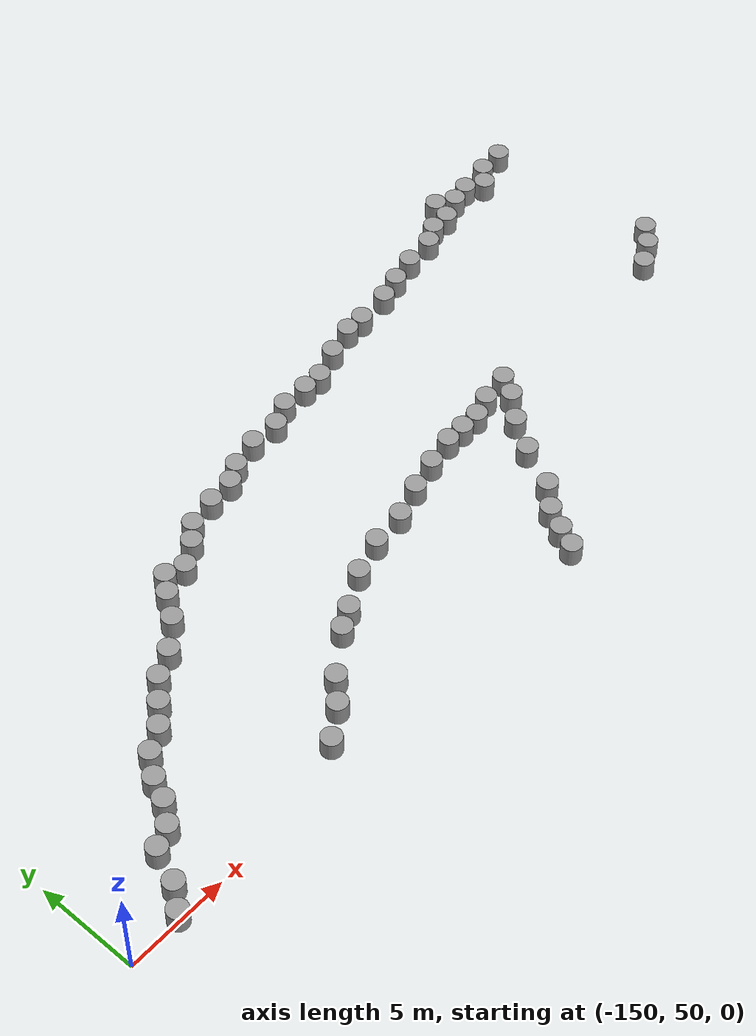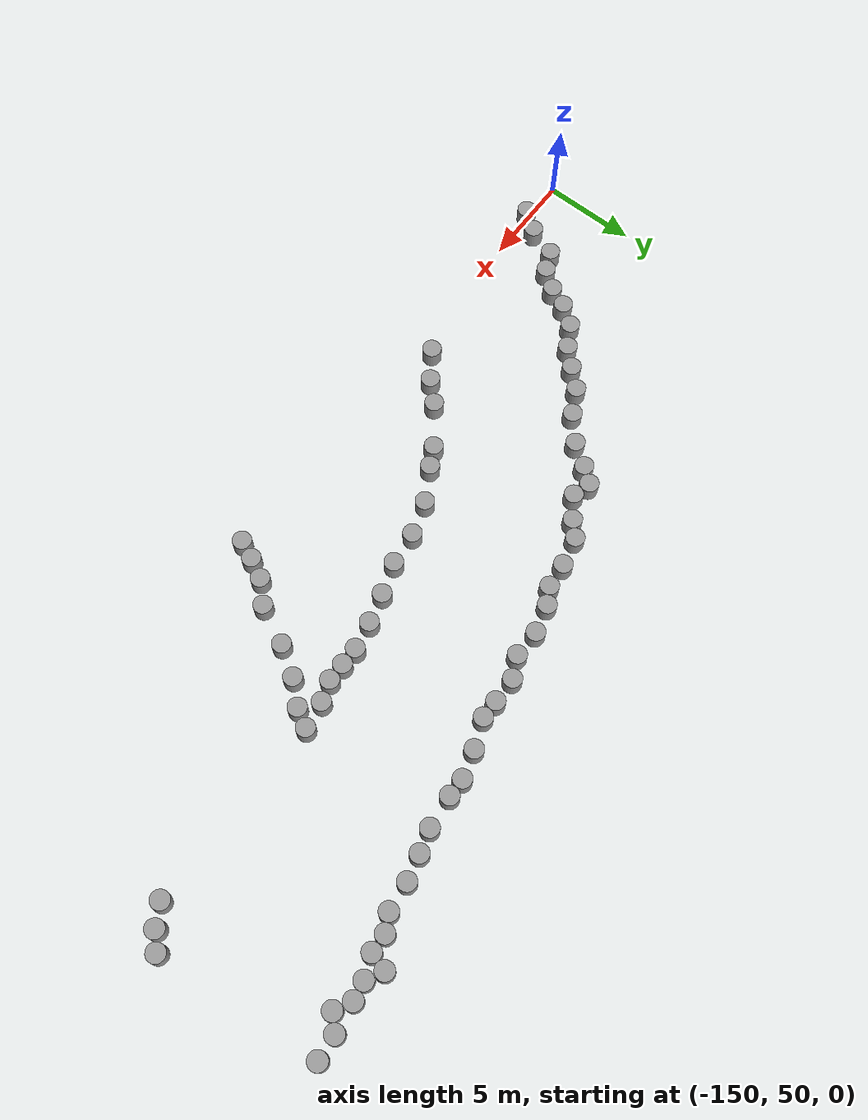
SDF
<sdf version="1.7">
 <world name="default">
  <model name="unit_cylinder_85_clone_116">
   <pose>-106.053 68.435 0.452814 0.005546 0.001094 -0.003629</pose>
   <link name="link">
    <inertial>
     <mass>1</mass>
     <inertia><ixx>0.145833</ixx><ixy>0</ixy><ixz>0</ixz><iyy>0.145833</iyy><iyz>0</iyz><izz>0.125</izz></inertia>
    </inertial>
    <collision name="collision">
     <geometry><cylinder><radius>0.5</radius><length>1</length></cylinder></geometry>
    </collision>
    <visual name="visual">
     <geometry><cylinder><radius>0.5</radius><length>1</length></cylinder></geometry>
     <material>
      <script><name>Gazebo/Grey</name><uri>file://media/materials/scripts/gazebo.material</uri></script>
     </material>
    </visual>
   </link>
  </model>
  <model name="unit_cylinder_85_clone_133">
   <pose>-105.223 59.7453 0.450739 -0.000106 -0.001153 -8.8e-05</pose>
   <link name="link">
    <inertial>
     <mass>1</mass>
     <inertia><ixx>0.145833</ixx><ixy>0</ixy><ixz>0</ixz><iyy>0.145833</iyy><iyz>0</iyz><izz>0.125</izz></inertia>
    </inertial>
    <collision name="collision">
     <geometry><cylinder><radius>0.5</radius><length>1</length></cylinder></geometry>
    </collision>
    <visual name="visual">
     <geometry><cylinder><radius>0.5</radius><length>1</length></cylinder></geometry>
     <material>
      <script><name>Gazebo/Grey</name><uri>file://media/materials/scripts/gazebo.material</uri></script>
     </material>
    </visual>
   </link>
  </model>
  <model name="unit_cylinder_85_clone_134">
   <pose>-106.001 59.0001 0.449909 -0.000101 -0.001156 0.000269</pose>
   <link name="link">
    <inertial>
     <mass>1</mass>
     <inertia><ixx>0.145833</ixx><ixy>0</ixy><ixz>0</ixz><iyy>0.145833</iyy><iyz>0</iyz><izz>0.125</izz></inertia>
    </inertial>
    <collision name="collision">
     <geometry><cylinder><radius>0.5</radius><length>1</length></cylinder></geometry>
    </collision>
    <visual name="visual">
     <geometry><cylinder><radius>0.5</radius><length>1</length></cylinder></geometry>
     <material>
      <script><name>Gazebo/Grey</name><uri>file://media/materials/scripts/gazebo.material</uri></script>
     </material>
    </visual>
   </link>
  </model>
  <model name="unit_cylinder_85_clone_135">
   <pose>-107.103 58.3447 0.435562 -0.013154 -0.033875 0.000451</pose>
   <link name="link">
    <inertial>
     <mass>1</mass>
     <inertia><ixx>0.145833</ixx><ixy>0</ixy><ixz>0</ixz><iyy>0.145833</iyy><iyz>0</iyz><izz>0.125</izz></inertia>
    </inertial>
    <collision name="collision">
     <geometry><cylinder><radius>0.5</radius><length>1</length></cylinder></geometry>
    </collision>
    <visual name="visual">
     <geometry><cylinder><radius>0.5</radius><length>1</length></cylinder></geometry>
     <material>
      <script><name>Gazebo/Grey</name><uri>file://media/materials/scripts/gazebo.material</uri></script>
     </material>
    </visual>
   </link>
  </model>
  <model name="unit_cylinder_85_clone_230">
   <pose>-117.441 58.5671 0.450005 2e-06 -1.1e-05 0.000359</pose>
   <link name="link">
    <inertial>
     <mass>1</mass>
     <inertia><ixx>0.145833</ixx><ixy>0</ixy><ixz>0</ixz><iyy>0.145833</iyy><iyz>0</iyz><izz>0.125</izz></inertia>
    </inertial>
    <collision name="collision">
     <geometry><cylinder><radius>0.5</radius><length>1</length></cylinder></geometry>
    </collision>
    <visual name="visual">
     <geometry><cylinder><radius>0.5</radius><length>1</length></cylinder></geometry>
     <material>
      <script><name>Gazebo/Grey</name><uri>file://media/materials/scripts/gazebo.material</uri></script>
     </material>
    </visual>
   </link>
  </model>
  <model name="unit_cylinder_85_clone_231">
   <pose>-117.985 57.6195 0.44999 0 -0 0.000514</pose>
   <link name="link">
    <inertial>
     <mass>1</mass>
     <inertia><ixx>0.145833</ixx><ixy>0</ixy><ixz>0</ixz><iyy>0.145833</iyy><iyz>0</iyz><izz>0.125</izz></inertia>
    </inertial>
    <collision name="collision">
     <geometry><cylinder><radius>0.5</radius><length>1</length></cylinder></geometry>
    </collision>
    <visual name="visual">
     <geometry><cylinder><radius>0.5</radius><length>1</length></cylinder></geometry>
     <material>
      <script><name>Gazebo/Grey</name><uri>file://media/materials/scripts/gazebo.material</uri></script>
     </material>
    </visual>
   </link>
  </model>
  <model name="unit_cylinder_85_clone_232">
   <pose>-119.028 56.4934 0.449997 -5e-06 2e-06 0.000402</pose>
   <link name="link">
    <inertial>
     <mass>1</mass>
     <inertia><ixx>0.145833</ixx><ixy>0</ixy><ixz>0</ixz><iyy>0.145833</iyy><iyz>0</iyz><izz>0.125</izz></inertia>
    </inertial>
    <collision name="collision">
     <geometry><cylinder><radius>0.5</radius><length>1</length></cylinder></geometry>
    </collision>
    <visual name="visual">
     <geometry><cylinder><radius>0.5</radius><length>1</length></cylinder></geometry>
     <material>
      <script><name>Gazebo/Grey</name><uri>file://media/materials/scripts/gazebo.material</uri></script>
     </material>
    </visual>
   </link>
  </model>
  <model name="unit_cylinder_85_clone_233">
   <pose>-120 55.0001 0.45 0 -0 0.000477</pose>
   <link name="link">
    <inertial>
     <mass>1</mass>
     <inertia><ixx>0.145833</ixx><ixy>0</ixy><ixz>0</ixz><iyy>0.145833</iyy><iyz>0</iyz><izz>0.125</izz></inertia>
    </inertial>
    <collision name="collision">
     <geometry><cylinder><radius>0.5</radius><length>1</length></cylinder></geometry>
    </collision>
    <visual name="visual">
     <geometry><cylinder><radius>0.5</radius><length>1</length></cylinder></geometry>
     <material>
      <script><name>Gazebo/Grey</name><uri>file://media/materials/scripts/gazebo.material</uri></script>
     </material>
    </visual>
   </link>
  </model>
  <model name="unit_cylinder_85_clone_234">
   <pose>-121 52.9999 0.44999 0 -0 0.000353</pose>
   <link name="link">
    <inertial>
     <mass>1</mass>
     <inertia><ixx>0.145833</ixx><ixy>0</ixy><ixz>0</ixz><iyy>0.145833</iyy><iyz>0</iyz><izz>0.125</izz></inertia>
    </inertial>
    <collision name="collision">
     <geometry><cylinder><radius>0.5</radius><length>1</length></cylinder></geometry>
    </collision>
    <visual name="visual">
     <geometry><cylinder><radius>0.5</radius><length>1</length></cylinder></geometry>
     <material>
      <script><name>Gazebo/Grey</name><uri>file://media/materials/scripts/gazebo.material</uri></script>
     </material>
    </visual>
   </link>
  </model>
  <model name="unit_cylinder_85_clone_235">
   <pose>-122 51.9998 0.45 0 -0 0.000545</pose>
   <link name="link">
    <inertial>
     <mass>1</mass>
     <inertia><ixx>0.145833</ixx><ixy>0</ixy><ixz>0</ixz><iyy>0.145833</iyy><iyz>0</iyz><izz>0.125</izz></inertia>
    </inertial>
    <collision name="collision">
     <geometry><cylinder><radius>0.5</radius><length>1</length></cylinder></geometry>
    </collision>
    <visual name="visual">
     <geometry><cylinder><radius>0.5</radius><length>1</length></cylinder></geometry>
     <material>
      <script><name>Gazebo/Grey</name><uri>file://media/materials/scripts/gazebo.material</uri></script>
     </material>
    </visual>
   </link>
  </model>
  <model name="unit_cylinder_85_clone_236">
   <pose>-122.56 50.9675 0.449991 0 2e-06 0.000415</pose>
   <link name="link">
    <inertial>
     <mass>1</mass>
     <inertia><ixx>0.145833</ixx><ixy>0</ixy><ixz>0</ixz><iyy>0.145833</iyy><iyz>0</iyz><izz>0.125</izz></inertia>
    </inertial>
    <collision name="collision">
     <geometry><cylinder><radius>0.5</radius><length>1</length></cylinder></geometry>
    </collision>
    <visual name="visual">
     <geometry><cylinder><radius>0.5</radius><length>1</length></cylinder></geometry>
     <material>
      <script><name>Gazebo/Grey</name><uri>file://media/materials/scripts/gazebo.material</uri></script>
     </material>
    </visual>
   </link>
  </model>
  <model name="unit_cylinder_85_clone_237">
   <pose>-123 50 0.449997 3e-06 -5e-06 0.00042</pose>
   <link name="link">
    <inertial>
     <mass>1</mass>
     <inertia><ixx>0.145833</ixx><ixy>0</ixy><ixz>0</ixz><iyy>0.145833</iyy><iyz>0</iyz><izz>0.125</izz></inertia>
    </inertial>
    <collision name="collision">
     <geometry><cylinder><radius>0.5</radius><length>1</length></cylinder></geometry>
    </collision>
    <visual name="visual">
     <geometry><cylinder><radius>0.5</radius><length>1</length></cylinder></geometry>
     <material>
      <script><name>Gazebo/Grey</name><uri>file://media/materials/scripts/gazebo.material</uri></script>
     </material>
    </visual>
   </link>
  </model>
  <model name="unit_cylinder_85_clone_246">
   <pose>-118.909 58.3639 0.450003 -5e-06 4e-06 0.000749</pose>
   <link name="link">
    <inertial>
     <mass>1</mass>
     <inertia><ixx>0.145833</ixx><ixy>0</ixy><ixz>0</ixz><iyy>0.145833</iyy><iyz>0</iyz><izz>0.125</izz></inertia>
    </inertial>
    <collision name="collision">
     <geometry><cylinder><radius>0.5</radius><length>1</length></cylinder></geometry>
    </collision>
    <visual name="visual">
     <geometry><cylinder><radius>0.5</radius><length>1</length></cylinder></geometry>
     <material>
      <script><name>Gazebo/Grey</name><uri>file://media/materials/scripts/gazebo.material</uri></script>
     </material>
    </visual>
   </link>
  </model>
  <model name="unit_cylinder_85_clone_244_clone_2">
   <pose>-120 58 0.449996 -1e-06 2e-06 0.000366</pose>
   <link name="link">
    <inertial>
     <mass>1</mass>
     <inertia><ixx>0.145833</ixx><ixy>0</ixy><ixz>0</ixz><iyy>0.145833</iyy><iyz>0</iyz><izz>0.125</izz></inertia>
    </inertial>
    <collision name="collision">
     <geometry><cylinder><radius>0.5</radius><length>1</length></cylinder></geometry>
    </collision>
    <visual name="visual">
     <geometry><cylinder><radius>0.5</radius><length>1</length></cylinder></geometry>
     <material>
      <script><name>Gazebo/Grey</name><uri>file://media/materials/scripts/gazebo.material</uri></script>
     </material>
    </visual>
   </link>
  </model>
  <model name="unit_cylinder_85_clone_244_clone_3">
   <pose>-121 58 0.449997 -4e-06 2e-06 0.00041</pose>
   <link name="link">
    <inertial>
     <mass>1</mass>
     <inertia><ixx>0.145833</ixx><ixy>0</ixy><ixz>0</ixz><iyy>0.145833</iyy><iyz>0</iyz><izz>0.125</izz></inertia>
    </inertial>
    <collision name="collision">
     <geometry><cylinder><radius>0.5</radius><length>1</length></cylinder></geometry>
    </collision>
    <visual name="visual">
     <geometry><cylinder><radius>0.5</radius><length>1</length></cylinder></geometry>
     <material>
      <script><name>Gazebo/Grey</name><uri>file://media/materials/scripts/gazebo.material</uri></script>
     </material>
    </visual>
   </link>
  </model>
  <model name="unit_cylinder_85_clone_244_clone_4">
   <pose>-122 58 0.449998 6e-06 -1e-06 0.000341</pose>
   <link name="link">
    <inertial>
     <mass>1</mass>
     <inertia><ixx>0.145833</ixx><ixy>0</ixy><ixz>0</ixz><iyy>0.145833</iyy><iyz>0</iyz><izz>0.125</izz></inertia>
    </inertial>
    <collision name="collision">
     <geometry><cylinder><radius>0.5</radius><length>1</length></cylinder></geometry>
    </collision>
    <visual name="visual">
     <geometry><cylinder><radius>0.5</radius><length>1</length></cylinder></geometry>
     <material>
      <script><name>Gazebo/Grey</name><uri>file://media/materials/scripts/gazebo.material</uri></script>
     </material>
    </visual>
   </link>
  </model>
  <model name="unit_cylinder_85_clone_244_clone_5">
   <pose>-123.481 57.7121 0.449998 0 3e-06 0.00035</pose>
   <link name="link">
    <inertial>
     <mass>1</mass>
     <inertia><ixx>0.145833</ixx><ixy>0</ixy><ixz>0</ixz><iyy>0.145833</iyy><iyz>0</iyz><izz>0.125</izz></inertia>
    </inertial>
    <collision name="collision">
     <geometry><cylinder><radius>0.5</radius><length>1</length></cylinder></geometry>
    </collision>
    <visual name="visual">
     <geometry><cylinder><radius>0.5</radius><length>1</length></cylinder></geometry>
     <material>
      <script><name>Gazebo/Grey</name><uri>file://media/materials/scripts/gazebo.material</uri></script>
     </material>
    </visual>
   </link>
  </model>
  <model name="unit_cylinder_85_clone_244_clone_6">
   <pose>-125.037 57.2972 0.449996 -1e-06 1e-06 0.000514</pose>
   <link name="link">
    <inertial>
     <mass>1</mass>
     <inertia><ixx>0.145833</ixx><ixy>0</ixy><ixz>0</ixz><iyy>0.145833</iyy><iyz>0</iyz><izz>0.125</izz></inertia>
    </inertial>
    <collision name="collision">
     <geometry><cylinder><radius>0.5</radius><length>1</length></cylinder></geometry>
    </collision>
    <visual name="visual">
     <geometry><cylinder><radius>0.5</radius><length>1</length></cylinder></geometry>
     <material>
      <script><name>Gazebo/Grey</name><uri>file://media/materials/scripts/gazebo.material</uri></script>
     </material>
    </visual>
   </link>
  </model>
  <model name="unit_cylinder_85_clone_244_clone_7">
   <pose>-126.695 56.7493 0.45 0 -0 0.000553</pose>
   <link name="link">
    <inertial>
     <mass>1</mass>
     <inertia><ixx>0.145833</ixx><ixy>0</ixy><ixz>0</ixz><iyy>0.145833</iyy><iyz>0</iyz><izz>0.125</izz></inertia>
    </inertial>
    <collision name="collision">
     <geometry><cylinder><radius>0.5</radius><length>1</length></cylinder></geometry>
    </collision>
    <visual name="visual">
     <geometry><cylinder><radius>0.5</radius><length>1</length></cylinder></geometry>
     <material>
      <script><name>Gazebo/Grey</name><uri>file://media/materials/scripts/gazebo.material</uri></script>
     </material>
    </visual>
   </link>
  </model>
  <model name="unit_cylinder_85_clone_244_clone_8">
   <pose>-128.489 56.5482 0.449995 0 3e-06 0.000417</pose>
   <link name="link">
    <inertial>
     <mass>1</mass>
     <inertia><ixx>0.145833</ixx><ixy>0</ixy><ixz>0</ixz><iyy>0.145833</iyy><iyz>0</iyz><izz>0.125</izz></inertia>
    </inertial>
    <collision name="collision">
     <geometry><cylinder><radius>0.5</radius><length>1</length></cylinder></geometry>
    </collision>
    <visual name="visual">
     <geometry><cylinder><radius>0.5</radius><length>1</length></cylinder></geometry>
     <material>
      <script><name>Gazebo/Grey</name><uri>file://media/materials/scripts/gazebo.material</uri></script>
     </material>
    </visual>
   </link>
  </model>
  <model name="unit_cylinder_85_clone_244_clone_9">
   <pose>-130.267 55.9823 0.45 0 -0 0.000177</pose>
   <link name="link">
    <inertial>
     <mass>1</mass>
     <inertia><ixx>0.145833</ixx><ixy>0</ixy><ixz>0</ixz><iyy>0.145833</iyy><iyz>0</iyz><izz>0.125</izz></inertia>
    </inertial>
    <collision name="collision">
     <geometry><cylinder><radius>0.5</radius><length>1</length></cylinder></geometry>
    </collision>
    <visual name="visual">
     <geometry><cylinder><radius>0.5</radius><length>1</length></cylinder></geometry>
     <material>
      <script><name>Gazebo/Grey</name><uri>file://media/materials/scripts/gazebo.material</uri></script>
     </material>
    </visual>
   </link>
  </model>
  <model name="unit_cylinder_85_clone_244_clone_10">
   <pose>-132 55.0001 0.45 0 -0 0.000217</pose>
   <link name="link">
    <inertial>
     <mass>1</mass>
     <inertia><ixx>0.145833</ixx><ixy>0</ixy><ixz>0</ixz><iyy>0.145833</iyy><iyz>0</iyz><izz>0.125</izz></inertia>
    </inertial>
    <collision name="collision">
     <geometry><cylinder><radius>0.5</radius><length>1</length></cylinder></geometry>
    </collision>
    <visual name="visual">
     <geometry><cylinder><radius>0.5</radius><length>1</length></cylinder></geometry>
     <material>
      <script><name>Gazebo/Grey</name><uri>file://media/materials/scripts/gazebo.material</uri></script>
     </material>
    </visual>
   </link>
  </model>
  <model name="unit_cylinder_85_clone_244_clone_11">
   <pose>-133 54.4759 0.45 -1e-06 -1e-06 0.000245</pose>
   <link name="link">
    <inertial>
     <mass>1</mass>
     <inertia><ixx>0.145833</ixx><ixy>0</ixy><ixz>0</ixz><iyy>0.145833</iyy><iyz>0</iyz><izz>0.125</izz></inertia>
    </inertial>
    <collision name="collision">
     <geometry><cylinder><radius>0.5</radius><length>1</length></cylinder></geometry>
    </collision>
    <visual name="visual">
     <geometry><cylinder><radius>0.5</radius><length>1</length></cylinder></geometry>
     <material>
      <script><name>Gazebo/Grey</name><uri>file://media/materials/scripts/gazebo.material</uri></script>
     </material>
    </visual>
   </link>
  </model>
  <model name="unit_cylinder_85_clone_244_clone_12">
   <pose>-135 53 0.449996 -3e-06 3e-06 0.000351</pose>
   <link name="link">
    <inertial>
     <mass>1</mass>
     <inertia><ixx>0.145833</ixx><ixy>0</ixy><ixz>0</ixz><iyy>0.145833</iyy><iyz>0</iyz><izz>0.125</izz></inertia>
    </inertial>
    <collision name="collision">
     <geometry><cylinder><radius>0.5</radius><length>1</length></cylinder></geometry>
    </collision>
    <visual name="visual">
     <geometry><cylinder><radius>0.5</radius><length>1</length></cylinder></geometry>
     <material>
      <script><name>Gazebo/Grey</name><uri>file://media/materials/scripts/gazebo.material</uri></script>
     </material>
    </visual>
   </link>
  </model>
  <model name="unit_cylinder_85_clone_244_clone_13">
   <pose>-136 52.0001 0.449992 -2e-06 3e-06 0.00041</pose>
   <link name="link">
    <inertial>
     <mass>1</mass>
     <inertia><ixx>0.145833</ixx><ixy>0</ixy><ixz>0</ixz><iyy>0.145833</iyy><iyz>0</iyz><izz>0.125</izz></inertia>
    </inertial>
    <collision name="collision">
     <geometry><cylinder><radius>0.5</radius><length>1</length></cylinder></geometry>
    </collision>
    <visual name="visual">
     <geometry><cylinder><radius>0.5</radius><length>1</length></cylinder></geometry>
     <material>
      <script><name>Gazebo/Grey</name><uri>file://media/materials/scripts/gazebo.material</uri></script>
     </material>
    </visual>
   </link>
  </model>
  <model name="unit_cylinder_85_clone_244_clone_14">
   <pose>-137.457 51 0.449997 -4e-06 -3e-06 0.000346</pose>
   <link name="link">
    <inertial>
     <mass>1</mass>
     <inertia><ixx>0.145833</ixx><ixy>0</ixy><ixz>0</ixz><iyy>0.145833</iyy><iyz>0</iyz><izz>0.125</izz></inertia>
    </inertial>
    <collision name="collision">
     <geometry><cylinder><radius>0.5</radius><length>1</length></cylinder></geometry>
    </collision>
    <visual name="visual">
     <geometry><cylinder><radius>0.5</radius><length>1</length></cylinder></geometry>
     <material>
      <script><name>Gazebo/Grey</name><uri>file://media/materials/scripts/gazebo.material</uri></script>
     </material>
    </visual>
   </link>
  </model>
  <model name="unit_cylinder_85_clone_244_clone_152">
   <pose>-147.434 49.9787 0.637858 0.01348 -0.00325 0.000731</pose>
   <link name="link">
    <inertial>
     <mass>1</mass>
     <inertia><ixx>0.145833</ixx><ixy>0</ixy><ixz>0</ixz><iyy>0.145833</iyy><iyz>0</iyz><izz>0.125</izz></inertia>
    </inertial>
    <collision name="collision">
     <geometry><cylinder><radius>0.5</radius><length>1</length></cylinder></geometry>
    </collision>
    <visual name="visual">
     <geometry><cylinder><radius>0.5</radius><length>1</length></cylinder></geometry>
     <material>
      <script><name>Gazebo/Grey</name><uri>file://media/materials/scripts/gazebo.material</uri></script>
     </material>
    </visual>
   </link>
  </model>
  <model name="unit_cylinder_85_clone_244_clone_153">
   <pose>-146.642 50.9991 0.654371 0.013319 -0.003471 -0.005184</pose>
   <link name="link">
    <inertial>
     <mass>1</mass>
     <inertia><ixx>0.145833</ixx><ixy>0</ixy><ixz>0</ixz><iyy>0.145833</iyy><iyz>0</iyz><izz>0.125</izz></inertia>
    </inertial>
    <collision name="collision">
     <geometry><cylinder><radius>0.5</radius><length>1</length></cylinder></geometry>
    </collision>
    <visual name="visual">
     <geometry><cylinder><radius>0.5</radius><length>1</length></cylinder></geometry>
     <material>
      <script><name>Gazebo/Grey</name><uri>file://media/materials/scripts/gazebo.material</uri></script>
     </material>
    </visual>
   </link>
  </model>
  <model name="unit_cylinder_85_clone_244_clone_154">
   <pose>-146 52.5713 0.677487 0.013486 -0.003247 0.000492</pose>
   <link name="link">
    <inertial>
     <mass>1</mass>
     <inertia><ixx>0.145833</ixx><ixy>0</ixy><ixz>0</ixz><iyy>0.145833</iyy><iyz>0</iyz><izz>0.125</izz></inertia>
    </inertial>
    <collision name="collision">
     <geometry><cylinder><radius>0.5</radius><length>1</length></cylinder></geometry>
    </collision>
    <visual name="visual">
     <geometry><cylinder><radius>0.5</radius><length>1</length></cylinder></geometry>
     <material>
      <script><name>Gazebo/Grey</name><uri>file://media/materials/scripts/gazebo.material</uri></script>
     </material>
    </visual>
   </link>
  </model>
  <model name="unit_cylinder_85_clone_244_clone_155">
   <pose>-144.993 53.0038 0.671348 -0.003723 0.010246 0.001365</pose>
   <link name="link">
    <inertial>
     <mass>1</mass>
     <inertia><ixx>0.145833</ixx><ixy>0</ixy><ixz>0</ixz><iyy>0.145833</iyy><iyz>0</iyz><izz>0.125</izz></inertia>
    </inertial>
    <collision name="collision">
     <geometry><cylinder><radius>0.5</radius><length>1</length></cylinder></geometry>
    </collision>
    <visual name="visual">
     <geometry><cylinder><radius>0.5</radius><length>1</length></cylinder></geometry>
     <material>
      <script><name>Gazebo/Grey</name><uri>file://media/materials/scripts/gazebo.material</uri></script>
     </material>
    </visual>
   </link>
  </model>
  <model name="unit_cylinder_85_clone_244_clone_156">
   <pose>-144.239 53.9685 0.660094 -0.003739 0.010418 -0.016776</pose>
   <link name="link">
    <inertial>
     <mass>1</mass>
     <inertia><ixx>0.145833</ixx><ixy>0</ixy><ixz>0</ixz><iyy>0.145833</iyy><iyz>0</iyz><izz>0.125</izz></inertia>
    </inertial>
    <collision name="collision">
     <geometry><cylinder><radius>0.5</radius><length>1</length></cylinder></geometry>
    </collision>
    <visual name="visual">
     <geometry><cylinder><radius>0.5</radius><length>1</length></cylinder></geometry>
     <material>
      <script><name>Gazebo/Grey</name><uri>file://media/materials/scripts/gazebo.material</uri></script>
     </material>
    </visual>
   </link>
  </model>
  <model name="unit_cylinder_85_clone_244_clone_157">
   <pose>-143.762 55.0008 0.651339 -0.00311 0.010931 2e-05</pose>
   <link name="link">
    <inertial>
     <mass>1</mass>
     <inertia><ixx>0.145833</ixx><ixy>0</ixy><ixz>0</ixz><iyy>0.145833</iyy><iyz>0</iyz><izz>0.125</izz></inertia>
    </inertial>
    <collision name="collision">
     <geometry><cylinder><radius>0.5</radius><length>1</length></cylinder></geometry>
    </collision>
    <visual name="visual">
     <geometry><cylinder><radius>0.5</radius><length>1</length></cylinder></geometry>
     <material>
      <script><name>Gazebo/Grey</name><uri>file://media/materials/scripts/gazebo.material</uri></script>
     </material>
    </visual>
   </link>
  </model>
  <model name="unit_cylinder_85_clone_244_clone_158">
   <pose>-142.992 56.0013 0.639972 -0.002875 0.010688 0.000797</pose>
   <link name="link">
    <inertial>
     <mass>1</mass>
     <inertia><ixx>0.145833</ixx><ixy>0</ixy><ixz>0</ixz><iyy>0.145833</iyy><iyz>0</iyz><izz>0.125</izz></inertia>
    </inertial>
    <collision name="collision">
     <geometry><cylinder><radius>0.5</radius><length>1</length></cylinder></geometry>
    </collision>
    <visual name="visual">
     <geometry><cylinder><radius>0.5</radius><length>1</length></cylinder></geometry>
     <material>
      <script><name>Gazebo/Grey</name><uri>file://media/materials/scripts/gazebo.material</uri></script>
     </material>
    </visual>
   </link>
  </model>
  <model name="unit_cylinder_85_clone_244_clone_159">
   <pose>-141.856 56.6477 0.626382 -0.002114 0.011145 0.000272</pose>
   <link name="link">
    <inertial>
     <mass>1</mass>
     <inertia><ixx>0.145833</ixx><ixy>0</ixy><ixz>0</ixz><iyy>0.145833</iyy><iyz>0</iyz><izz>0.125</izz></inertia>
    </inertial>
    <collision name="collision">
     <geometry><cylinder><radius>0.5</radius><length>1</length></cylinder></geometry>
    </collision>
    <visual name="visual">
     <geometry><cylinder><radius>0.5</radius><length>1</length></cylinder></geometry>
     <material>
      <script><name>Gazebo/Grey</name><uri>file://media/materials/scripts/gazebo.material</uri></script>
     </material>
    </visual>
   </link>
  </model>
  <model name="unit_cylinder_85_clone_244_clone_160">
   <pose>-140.989 57.5128 0.61465 -0.00199 0.011494 0.00035</pose>
   <link name="link">
    <inertial>
     <mass>1</mass>
     <inertia><ixx>0.145833</ixx><ixy>0</ixy><ixz>0</ixz><iyy>0.145833</iyy><iyz>0</iyz><izz>0.125</izz></inertia>
    </inertial>
    <collision name="collision">
     <geometry><cylinder><radius>0.5</radius><length>1</length></cylinder></geometry>
    </collision>
    <visual name="visual">
     <geometry><cylinder><radius>0.5</radius><length>1</length></cylinder></geometry>
     <material>
      <script><name>Gazebo/Grey</name><uri>file://media/materials/scripts/gazebo.material</uri></script>
     </material>
    </visual>
   </link>
  </model>
  <model name="unit_cylinder_85_clone_244_clone_162">
   <pose>-138.812 59.1006 0.58416 -0.004366 0.015285 0.043282</pose>
   <link name="link">
    <inertial>
     <mass>1</mass>
     <inertia><ixx>0.145833</ixx><ixy>0</ixy><ixz>0</ixz><iyy>0.145833</iyy><iyz>0</iyz><izz>0.125</izz></inertia>
    </inertial>
    <collision name="collision">
     <geometry><cylinder><radius>0.5</radius><length>1</length></cylinder></geometry>
    </collision>
    <visual name="visual">
     <geometry><cylinder><radius>0.5</radius><length>1</length></cylinder></geometry>
     <material>
      <script><name>Gazebo/Grey</name><uri>file://media/materials/scripts/gazebo.material</uri></script>
     </material>
    </visual>
   </link>
  </model>
  <model name="unit_cylinder_85_clone_244_clone_163">
   <pose>-137.543 60.1735 0.558541 -0.003817 0.016951 -0.00374</pose>
   <link name="link">
    <inertial>
     <mass>1</mass>
     <inertia><ixx>0.145833</ixx><ixy>0</ixy><ixz>0</ixz><iyy>0.145833</iyy><iyz>0</iyz><izz>0.125</izz></inertia>
    </inertial>
    <collision name="collision">
     <geometry><cylinder><radius>0.5</radius><length>1</length></cylinder></geometry>
    </collision>
    <visual name="visual">
     <geometry><cylinder><radius>0.5</radius><length>1</length></cylinder></geometry>
     <material>
      <script><name>Gazebo/Grey</name><uri>file://media/materials/scripts/gazebo.material</uri></script>
     </material>
    </visual>
   </link>
  </model>
  <model name="unit_cylinder_85_clone_244_clone_164">
   <pose>-140.09 58.4318 0.602476 -0.001979 0.011503 0.000441</pose>
   <link name="link">
    <inertial>
     <mass>1</mass>
     <inertia><ixx>0.145833</ixx><ixy>0</ixy><ixz>0</ixz><iyy>0.145833</iyy><iyz>0</iyz><izz>0.125</izz></inertia>
    </inertial>
    <collision name="collision">
     <geometry><cylinder><radius>0.5</radius><length>1</length></cylinder></geometry>
    </collision>
    <visual name="visual">
     <geometry><cylinder><radius>0.5</radius><length>1</length></cylinder></geometry>
     <material>
      <script><name>Gazebo/Grey</name><uri>file://media/materials/scripts/gazebo.material</uri></script>
     </material>
    </visual>
   </link>
  </model>
  <model name="unit_cylinder_85_clone_244_clone_161">
   <pose>-136.728 61.2891 0.540705 -0.000422 0.017203 0.167466</pose>
   <link name="link">
    <inertial>
     <mass>1</mass>
     <inertia><ixx>0.145833</ixx><ixy>0</ixy><ixz>0</ixz><iyy>0.145833</iyy><iyz>0</iyz><izz>0.125</izz></inertia>
    </inertial>
    <collision name="collision">
     <geometry><cylinder><radius>0.5</radius><length>1</length></cylinder></geometry>
    </collision>
    <visual name="visual">
     <geometry><cylinder><radius>0.5</radius><length>1</length></cylinder></geometry>
     <material>
      <script><name>Gazebo/Grey</name><uri>file://media/materials/scripts/gazebo.material</uri></script>
     </material>
    </visual>
   </link>
  </model>
  <model name="unit_cylinder_85_clone_244_clone_165">
   <pose>-136.089 62.058 0.527312 -0.012348 0.011147 -0.605053</pose>
   <link name="link">
    <inertial>
     <mass>1</mass>
     <inertia><ixx>0.145833</ixx><ixy>0</ixy><ixz>0</ixz><iyy>0.145833</iyy><iyz>0</iyz><izz>0.125</izz></inertia>
    </inertial>
    <collision name="collision">
     <geometry><cylinder><radius>0.5</radius><length>1</length></cylinder></geometry>
    </collision>
    <visual name="visual">
     <geometry><cylinder><radius>0.5</radius><length>1</length></cylinder></geometry>
     <material>
      <script><name>Gazebo/Grey</name><uri>file://media/materials/scripts/gazebo.material</uri></script>
     </material>
    </visual>
   </link>
  </model>
  <model name="unit_cylinder_85_clone_244_clone_166">
   <pose>-135.13 61.7745 0.513364 0.008734 0.012676 0.665802</pose>
   <link name="link">
    <inertial>
     <mass>1</mass>
     <inertia><ixx>0.145833</ixx><ixy>0</ixy><ixz>0</ixz><iyy>0.145833</iyy><iyz>0</iyz><izz>0.125</izz></inertia>
    </inertial>
    <collision name="collision">
     <geometry><cylinder><radius>0.5</radius><length>1</length></cylinder></geometry>
    </collision>
    <visual name="visual">
     <geometry><cylinder><radius>0.5</radius><length>1</length></cylinder></geometry>
     <material>
      <script><name>Gazebo/Grey</name><uri>file://media/materials/scripts/gazebo.material</uri></script>
     </material>
    </visual>
   </link>
  </model>
  <model name="unit_cylinder_85_clone_244_clone_167">
   <pose>-133.239 63.1855 0.482376 -0.000198 0.016426 0.00124</pose>
   <link name="link">
    <inertial>
     <mass>1</mass>
     <inertia><ixx>0.145833</ixx><ixy>0</ixy><ixz>0</ixz><iyy>0.145833</iyy><iyz>0</iyz><izz>0.125</izz></inertia>
    </inertial>
    <collision name="collision">
     <geometry><cylinder><radius>0.5</radius><length>1</length></cylinder></geometry>
    </collision>
    <visual name="visual">
     <geometry><cylinder><radius>0.5</radius><length>1</length></cylinder></geometry>
     <material>
      <script><name>Gazebo/Grey</name><uri>file://media/materials/scripts/gazebo.material</uri></script>
     </material>
    </visual>
   </link>
  </model>
  <model name="unit_cylinder_85_clone_244_clone_168">
   <pose>-133.981 62.5153 0.494719 -0.000214 0.016425 0.000258</pose>
   <link name="link">
    <inertial>
     <mass>1</mass>
     <inertia><ixx>0.145833</ixx><ixy>0</ixy><ixz>0</ixz><iyy>0.145833</iyy><iyz>0</iyz><izz>0.125</izz></inertia>
    </inertial>
    <collision name="collision">
     <geometry><cylinder><radius>0.5</radius><length>1</length></cylinder></geometry>
    </collision>
    <visual name="visual">
     <geometry><cylinder><radius>0.5</radius><length>1</length></cylinder></geometry>
     <material>
      <script><name>Gazebo/Grey</name><uri>file://media/materials/scripts/gazebo.material</uri></script>
     </material>
    </visual>
   </link>
  </model>
  <model name="unit_cylinder_85_clone_244_clone_169">
   <pose>-131.723 63.5289 0.459622 0.001278 0.012257 -0.006857</pose>
   <link name="link">
    <inertial>
     <mass>1</mass>
     <inertia><ixx>0.145833</ixx><ixy>0</ixy><ixz>0</ixz><iyy>0.145833</iyy><iyz>0</iyz><izz>0.125</izz></inertia>
    </inertial>
    <collision name="collision">
     <geometry><cylinder><radius>0.5</radius><length>1</length></cylinder></geometry>
    </collision>
    <visual name="visual">
     <geometry><cylinder><radius>0.5</radius><length>1</length></cylinder></geometry>
     <material>
      <script><name>Gazebo/Grey</name><uri>file://media/materials/scripts/gazebo.material</uri></script>
     </material>
    </visual>
   </link>
  </model>
  <model name="unit_cylinder_85_clone_244_clone_171">
   <pose>-130.376 63.6509 0.453162 0.004774 0.000781 0.022787</pose>
   <link name="link">
    <inertial>
     <mass>1</mass>
     <inertia><ixx>0.145833</ixx><ixy>0</ixy><ixz>0</ixz><iyy>0.145833</iyy><iyz>0</iyz><izz>0.125</izz></inertia>
    </inertial>
    <collision name="collision">
     <geometry><cylinder><radius>0.5</radius><length>1</length></cylinder></geometry>
    </collision>
    <visual name="visual">
     <geometry><cylinder><radius>0.5</radius><length>1</length></cylinder></geometry>
     <material>
      <script><name>Gazebo/Grey</name><uri>file://media/materials/scripts/gazebo.material</uri></script>
     </material>
    </visual>
   </link>
  </model>
  <model name="unit_cylinder_85_clone_244_clone_172">
   <pose>-129.499 64.1316 0.454377 0.00529 0.00125 -0.010757</pose>
   <link name="link">
    <inertial>
     <mass>1</mass>
     <inertia><ixx>0.145833</ixx><ixy>0</ixy><ixz>0</ixz><iyy>0.145833</iyy><iyz>0</iyz><izz>0.125</izz></inertia>
    </inertial>
    <collision name="collision">
     <geometry><cylinder><radius>0.5</radius><length>1</length></cylinder></geometry>
    </collision>
    <visual name="visual">
     <geometry><cylinder><radius>0.5</radius><length>1</length></cylinder></geometry>
     <material>
      <script><name>Gazebo/Grey</name><uri>file://media/materials/scripts/gazebo.material</uri></script>
     </material>
    </visual>
   </link>
  </model>
  <model name="unit_cylinder_85_clone_244_clone_173">
   <pose>-128.01 64.507 0.454633 0.005305 0.001158 0.000516</pose>
   <link name="link">
    <inertial>
     <mass>1</mass>
     <inertia><ixx>0.145833</ixx><ixy>0</ixy><ixz>0</ixz><iyy>0.145833</iyy><iyz>0</iyz><izz>0.125</izz></inertia>
    </inertial>
    <collision name="collision">
     <geometry><cylinder><radius>0.5</radius><length>1</length></cylinder></geometry>
    </collision>
    <visual name="visual">
     <geometry><cylinder><radius>0.5</radius><length>1</length></cylinder></geometry>
     <material>
      <script><name>Gazebo/Grey</name><uri>file://media/materials/scripts/gazebo.material</uri></script>
     </material>
    </visual>
   </link>
  </model>
  <model name="unit_cylinder_85_clone_244_clone_174">
   <pose>-126.527 64.4678 0.453004 0.004718 0.001029 0.000556</pose>
   <link name="link">
    <inertial>
     <mass>1</mass>
     <inertia><ixx>0.145833</ixx><ixy>0</ixy><ixz>0</ixz><iyy>0.145833</iyy><iyz>0</iyz><izz>0.125</izz></inertia>
    </inertial>
    <collision name="collision">
     <geometry><cylinder><radius>0.5</radius><length>1</length></cylinder></geometry>
    </collision>
    <visual name="visual">
     <geometry><cylinder><radius>0.5</radius><length>1</length></cylinder></geometry>
     <material>
      <script><name>Gazebo/Grey</name><uri>file://media/materials/scripts/gazebo.material</uri></script>
     </material>
    </visual>
   </link>
  </model>
  <model name="unit_cylinder_85_clone_244_clone_175">
   <pose>-125.402 64.9961 0.454197 0.005303 0.001161 0.00089</pose>
   <link name="link">
    <inertial>
     <mass>1</mass>
     <inertia><ixx>0.145833</ixx><ixy>0</ixy><ixz>0</ixz><iyy>0.145833</iyy><iyz>0</iyz><izz>0.125</izz></inertia>
    </inertial>
    <collision name="collision">
     <geometry><cylinder><radius>0.5</radius><length>1</length></cylinder></geometry>
    </collision>
    <visual name="visual">
     <geometry><cylinder><radius>0.5</radius><length>1</length></cylinder></geometry>
     <material>
      <script><name>Gazebo/Grey</name><uri>file://media/materials/scripts/gazebo.material</uri></script>
     </material>
    </visual>
   </link>
  </model>
  <model name="unit_cylinder_85_clone_244_clone_176">
   <pose>-124.011 65.0071 0.453027 0.004736 0.000659 0.02244</pose>
   <link name="link">
    <inertial>
     <mass>1</mass>
     <inertia><ixx>0.145833</ixx><ixy>0</ixy><ixz>0</ixz><iyy>0.145833</iyy><iyz>0</iyz><izz>0.125</izz></inertia>
    </inertial>
    <collision name="collision">
     <geometry><cylinder><radius>0.5</radius><length>1</length></cylinder></geometry>
    </collision>
    <visual name="visual">
     <geometry><cylinder><radius>0.5</radius><length>1</length></cylinder></geometry>
     <material>
      <script><name>Gazebo/Grey</name><uri>file://media/materials/scripts/gazebo.material</uri></script>
     </material>
    </visual>
   </link>
  </model>
  <model name="unit_cylinder_85_clone_244_clone_177">
   <pose>-123.011 65.0056 0.452195 0.004583 0.000934 -0.039489</pose>
   <link name="link">
    <inertial>
     <mass>1</mass>
     <inertia><ixx>0.145833</ixx><ixy>0</ixy><ixz>0</ixz><iyy>0.145833</iyy><iyz>0</iyz><izz>0.125</izz></inertia>
    </inertial>
    <collision name="collision">
     <geometry><cylinder><radius>0.5</radius><length>1</length></cylinder></geometry>
    </collision>
    <visual name="visual">
     <geometry><cylinder><radius>0.5</radius><length>1</length></cylinder></geometry>
     <material>
      <script><name>Gazebo/Grey</name><uri>file://media/materials/scripts/gazebo.material</uri></script>
     </material>
    </visual>
   </link>
  </model>
  <model name="unit_cylinder_85_clone_244_clone_178">
   <pose>-121.485 65.5849 0.453788 0.004963 0.000817 0.000821</pose>
   <link name="link">
    <inertial>
     <mass>1</mass>
     <inertia><ixx>0.145833</ixx><ixy>0</ixy><ixz>0</ixz><iyy>0.145833</iyy><iyz>0</iyz><izz>0.125</izz></inertia>
    </inertial>
    <collision name="collision">
     <geometry><cylinder><radius>0.5</radius><length>1</length></cylinder></geometry>
    </collision>
    <visual name="visual">
     <geometry><cylinder><radius>0.5</radius><length>1</length></cylinder></geometry>
     <material>
      <script><name>Gazebo/Grey</name><uri>file://media/materials/scripts/gazebo.material</uri></script>
     </material>
    </visual>
   </link>
  </model>
  <model name="unit_cylinder_85_clone_244_clone_179">
   <pose>-119.999 65.9959 0.454505 0.005345 0.000868 0.000276</pose>
   <link name="link">
    <inertial>
     <mass>1</mass>
     <inertia><ixx>0.145833</ixx><ixy>0</ixy><ixz>0</ixz><iyy>0.145833</iyy><iyz>0</iyz><izz>0.125</izz></inertia>
    </inertial>
    <collision name="collision">
     <geometry><cylinder><radius>0.5</radius><length>1</length></cylinder></geometry>
    </collision>
    <visual name="visual">
     <geometry><cylinder><radius>0.5</radius><length>1</length></cylinder></geometry>
     <material>
      <script><name>Gazebo/Grey</name><uri>file://media/materials/scripts/gazebo.material</uri></script>
     </material>
    </visual>
   </link>
  </model>
  <model name="unit_cylinder_85_clone_244_clone_180">
   <pose>-118.999 65.9967 0.453806 0.004997 0.00087 0.000856</pose>
   <link name="link">
    <inertial>
     <mass>1</mass>
     <inertia><ixx>0.145833</ixx><ixy>0</ixy><ixz>0</ixz><iyy>0.145833</iyy><iyz>0</iyz><izz>0.125</izz></inertia>
    </inertial>
    <collision name="collision">
     <geometry><cylinder><radius>0.5</radius><length>1</length></cylinder></geometry>
    </collision>
    <visual name="visual">
     <geometry><cylinder><radius>0.5</radius><length>1</length></cylinder></geometry>
     <material>
      <script><name>Gazebo/Grey</name><uri>file://media/materials/scripts/gazebo.material</uri></script>
     </material>
    </visual>
   </link>
  </model>
  <model name="unit_cylinder_85_clone_244_clone_181">
   <pose>-117.228 66.1666 0.453296 0.004787 0.000782 -0.001145</pose>
   <link name="link">
    <inertial>
     <mass>1</mass>
     <inertia><ixx>0.145833</ixx><ixy>0</ixy><ixz>0</ixz><iyy>0.145833</iyy><iyz>0</iyz><izz>0.125</izz></inertia>
    </inertial>
    <collision name="collision">
     <geometry><cylinder><radius>0.5</radius><length>1</length></cylinder></geometry>
    </collision>
    <visual name="visual">
     <geometry><cylinder><radius>0.5</radius><length>1</length></cylinder></geometry>
     <material>
      <script><name>Gazebo/Grey</name><uri>file://media/materials/scripts/gazebo.material</uri></script>
     </material>
    </visual>
   </link>
  </model>
  <model name="unit_cylinder_85_clone_244_clone_182">
   <pose>-116 66.5032 0.453716 0.005059 0.000987 0.000894</pose>
   <link name="link">
    <inertial>
     <mass>1</mass>
     <inertia><ixx>0.145833</ixx><ixy>0</ixy><ixz>0</ixz><iyy>0.145833</iyy><iyz>0</iyz><izz>0.125</izz></inertia>
    </inertial>
    <collision name="collision">
     <geometry><cylinder><radius>0.5</radius><length>1</length></cylinder></geometry>
    </collision>
    <visual name="visual">
     <geometry><cylinder><radius>0.5</radius><length>1</length></cylinder></geometry>
     <material>
      <script><name>Gazebo/Grey</name><uri>file://media/materials/scripts/gazebo.material</uri></script>
     </material>
    </visual>
   </link>
  </model>
  <model name="unit_cylinder_85_clone_244_clone_183">
   <pose>-107.383 68.3302 0.453634 0.005858 0.00083 0.067912</pose>
   <link name="link">
    <inertial>
     <mass>1</mass>
     <inertia><ixx>0.145833</ixx><ixy>0</ixy><ixz>0</ixz><iyy>0.145833</iyy><iyz>0</iyz><izz>0.125</izz></inertia>
    </inertial>
    <collision name="collision">
     <geometry><cylinder><radius>0.5</radius><length>1</length></cylinder></geometry>
    </collision>
    <visual name="visual">
     <geometry><cylinder><radius>0.5</radius><length>1</length></cylinder></geometry>
     <material>
      <script><name>Gazebo/Grey</name><uri>file://media/materials/scripts/gazebo.material</uri></script>
     </material>
    </visual>
   </link>
  </model>
  <model name="unit_cylinder_85_clone_244_clone_184">
   <pose>-108.1 67.6302 0.450917 0.004779 0.001507 -0.093388</pose>
   <link name="link">
    <inertial>
     <mass>1</mass>
     <inertia><ixx>0.145833</ixx><ixy>0</ixy><ixz>0</ixz><iyy>0.145833</iyy><iyz>0</iyz><izz>0.125</izz></inertia>
    </inertial>
    <collision name="collision">
     <geometry><cylinder><radius>0.5</radius><length>1</length></cylinder></geometry>
    </collision>
    <visual name="visual">
     <geometry><cylinder><radius>0.5</radius><length>1</length></cylinder></geometry>
     <material>
      <script><name>Gazebo/Grey</name><uri>file://media/materials/scripts/gazebo.material</uri></script>
     </material>
    </visual>
   </link>
  </model>
  <model name="unit_cylinder_85_clone_244_clone_185">
   <pose>-108.997 68.1164 0.454384 0.005746 0.001381 -0.026837</pose>
   <link name="link">
    <inertial>
     <mass>1</mass>
     <inertia><ixx>0.145833</ixx><ixy>0</ixy><ixz>0</ixz><iyy>0.145833</iyy><iyz>0</iyz><izz>0.125</izz></inertia>
    </inertial>
    <collision name="collision">
     <geometry><cylinder><radius>0.5</radius><length>1</length></cylinder></geometry>
    </collision>
    <visual name="visual">
     <geometry><cylinder><radius>0.5</radius><length>1</length></cylinder></geometry>
     <material>
      <script><name>Gazebo/Grey</name><uri>file://media/materials/scripts/gazebo.material</uri></script>
     </material>
    </visual>
   </link>
  </model>
  <model name="unit_cylinder_85_clone_244_clone_186">
   <pose>-109.981 67.9419 0.454582 0.005783 0.001245 -0.002515</pose>
   <link name="link">
    <inertial>
     <mass>1</mass>
     <inertia><ixx>0.145833</ixx><ixy>0</ixy><ixz>0</ixz><iyy>0.145833</iyy><iyz>0</iyz><izz>0.125</izz></inertia>
    </inertial>
    <collision name="collision">
     <geometry><cylinder><radius>0.5</radius><length>1</length></cylinder></geometry>
    </collision>
    <visual name="visual">
     <geometry><cylinder><radius>0.5</radius><length>1</length></cylinder></geometry>
     <material>
      <script><name>Gazebo/Grey</name><uri>file://media/materials/scripts/gazebo.material</uri></script>
     </material>
    </visual>
   </link>
  </model>
  <model name="unit_cylinder_85_clone_244_clone_187">
   <pose>-110.876 68.4349 0.458535 0.005863 0.000737 0.084775</pose>
   <link name="link">
    <inertial>
     <mass>1</mass>
     <inertia><ixx>0.145833</ixx><ixy>0</ixy><ixz>0</ixz><iyy>0.145833</iyy><iyz>0</iyz><izz>0.125</izz></inertia>
    </inertial>
    <collision name="collision">
     <geometry><cylinder><radius>0.5</radius><length>1</length></cylinder></geometry>
    </collision>
    <visual name="visual">
     <geometry><cylinder><radius>0.5</radius><length>1</length></cylinder></geometry>
     <material>
      <script><name>Gazebo/Grey</name><uri>file://media/materials/scripts/gazebo.material</uri></script>
     </material>
    </visual>
   </link>
  </model>
  <model name="unit_cylinder_85_clone_244_clone_188">
   <pose>-111.154 67.474 0.453399 0.005342 0.002118 -0.16886</pose>
   <link name="link">
    <inertial>
     <mass>1</mass>
     <inertia><ixx>0.145833</ixx><ixy>0</ixy><ixz>0</ixz><iyy>0.145833</iyy><iyz>0</iyz><izz>0.125</izz></inertia>
    </inertial>
    <collision name="collision">
     <geometry><cylinder><radius>0.5</radius><length>1</length></cylinder></geometry>
    </collision>
    <visual name="visual">
     <geometry><cylinder><radius>0.5</radius><length>1</length></cylinder></geometry>
     <material>
      <script><name>Gazebo/Grey</name><uri>file://media/materials/scripts/gazebo.material</uri></script>
     </material>
    </visual>
   </link>
  </model>
  <model name="unit_cylinder_85_clone_244_clone_189">
   <pose>-112.169 67.4503 0.454442 0.005716 0.001493 -0.041558</pose>
   <link name="link">
    <inertial>
     <mass>1</mass>
     <inertia><ixx>0.145833</ixx><ixy>0</ixy><ixz>0</ixz><iyy>0.145833</iyy><iyz>0</iyz><izz>0.125</izz></inertia>
    </inertial>
    <collision name="collision">
     <geometry><cylinder><radius>0.5</radius><length>1</length></cylinder></geometry>
    </collision>
    <visual name="visual">
     <geometry><cylinder><radius>0.5</radius><length>1</length></cylinder></geometry>
     <material>
      <script><name>Gazebo/Grey</name><uri>file://media/materials/scripts/gazebo.material</uri></script>
     </material>
    </visual>
   </link>
  </model>
  <model name="unit_cylinder_85_clone_244_clone_190">
   <pose>-113.053 66.9833 0.453146 0.005219 0.000747 0.037249</pose>
   <link name="link">
    <inertial>
     <mass>1</mass>
     <inertia><ixx>0.145833</ixx><ixy>0</ixy><ixz>0</ixz><iyy>0.145833</iyy><iyz>0</iyz><izz>0.125</izz></inertia>
    </inertial>
    <collision name="collision">
     <geometry><cylinder><radius>0.5</radius><length>1</length></cylinder></geometry>
    </collision>
    <visual name="visual">
     <geometry><cylinder><radius>0.5</radius><length>1</length></cylinder></geometry>
     <material>
      <script><name>Gazebo/Grey</name><uri>file://media/materials/scripts/gazebo.material</uri></script>
     </material>
    </visual>
   </link>
  </model>
  <model name="unit_cylinder_85_clone_244_clone_191">
   <pose>-114.627 66.8253 0.453878 0.0057 0.001109 0.001376</pose>
   <link name="link">
    <inertial>
     <mass>1</mass>
     <inertia><ixx>0.145833</ixx><ixy>0</ixy><ixz>0</ixz><iyy>0.145833</iyy><iyz>0</iyz><izz>0.125</izz></inertia>
    </inertial>
    <collision name="collision">
     <geometry><cylinder><radius>0.5</radius><length>1</length></cylinder></geometry>
    </collision>
    <visual name="visual">
     <geometry><cylinder><radius>0.5</radius><length>1</length></cylinder></geometry>
     <material>
      <script><name>Gazebo/Grey</name><uri>file://media/materials/scripts/gazebo.material</uri></script>
     </material>
    </visual>
   </link>
  </model>
 </world>
</sdf>
